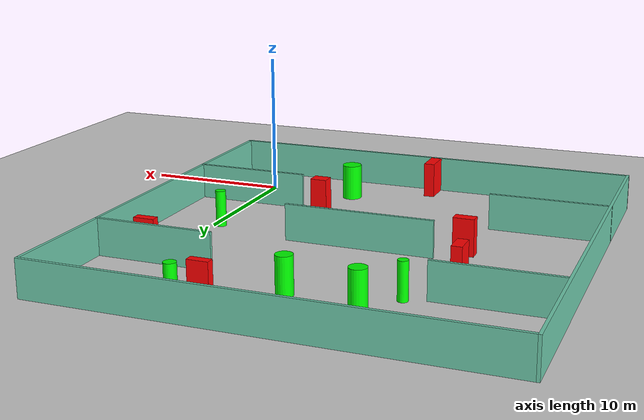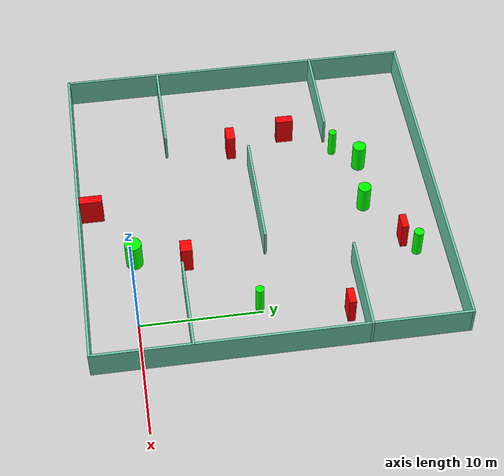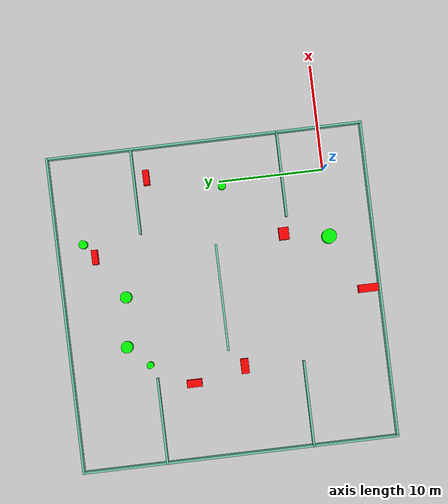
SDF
<sdf version="1.7">
 <world name="default">
  <light name="sun" type="directional">
   <pose>0 0 10 0 -0 0</pose>
   <diffuse>0.8 0.8 0.8 1</diffuse>
   <specular>0.2 0.2 0.2 1</specular>
   <attenuation>
    <range>1000</range>
    <constant>0.9</constant>
    <linear>0.01</linear>
    <quadratic>0.001</quadratic>
   </attenuation>
   <direction>-0.5 0.1 -0.9</direction>
   <spot><inner_angle>0</inner_angle><outer_angle>0</outer_angle><falloff>0</falloff></spot>
  </light>
  <model name="ground_plane">
   <static>1</static>
   <link name="link">
    <collision name="collision">
     <geometry><plane><normal>0 0 1</normal><size>100 100</size></plane></geometry>
     <surface>
      <contact><collide_bitmask>65535</collide_bitmask></contact>
      <friction><ode><mu>100</mu><mu2>50</mu2></ode></friction>
     </surface>
    </collision>
    <visual name="visual">
     <cast_shadows>0</cast_shadows>
     <geometry><plane><normal>0 0 1</normal><size>100 100</size></plane></geometry>
     <material>
      <script><uri>file://media/materials/scripts/gazebo.material</uri><name>Gazebo/Grey</name></script>
     </material>
    </visual>
   </link>
  </model>
  <gravity>0 0 -9.8</gravity>
  <magnetic_field>6e-06 2.3e-05 -4.2e-05</magnetic_field>
  <atmosphere type="adiabatic"/>
  <physics type="ode">
   <max_step_size>0.001</max_step_size>
   <real_time_factor>1</real_time_factor>
   <real_time_update_rate>1000</real_time_update_rate>
  </physics>
  <scene><ambient>0.4 0.4 0.4 1</ambient><background>0.7 0.7 0.7 1</background><shadows>1</shadows></scene>
  <spherical_coordinates>
   <surface_model>EARTH_WGS84</surface_model>
   <latitude_deg>0</latitude_deg>
   <longitude_deg>0</longitude_deg>
   <elevation>0</elevation>
   <heading_deg>0</heading_deg>
  </spherical_coordinates>
  <model name="my_base_walls">
   <link name="Wall_10">
    <collision name="Wall_10_Collision">
     <geometry><box><size>8.2 0.2 2.5</size></box></geometry>
     <pose>0 0 1.25 0 -0 0</pose>
    </collision>
    <visual name="Wall_10_Visual">
     <pose>0 0 1.25 0 -0 0</pose>
     <geometry><box><size>8.2 0.2 2.5</size></box></geometry>
     <material>
      <script><uri>file://media/materials/scripts/gazebo.material</uri><name>Gazebo/Grey</name></script>
      <ambient>0.435294 0.796078 0.67451 1</ambient>
     </material>
     <meta><layer>0</layer></meta>
    </visual>
    <pose>-11 -7 0 0 -0 0</pose>
   </link>
   <link name="Wall_12">
    <collision name="Wall_12_Collision">
     <geometry><box><size>8.2 0.2 2.5</size></box></geometry>
     <pose>0 0 1.25 0 -0 0</pose>
    </collision>
    <visual name="Wall_12_Visual">
     <pose>0 0 1.25 0 -0 0</pose>
     <geometry><box><size>8.2 0.2 2.5</size></box></geometry>
     <material>
      <script><uri>file://media/materials/scripts/gazebo.material</uri><name>Gazebo/Grey</name></script>
      <ambient>0.435294 0.796078 0.67451 1</ambient>
     </material>
     <meta><layer>0</layer></meta>
    </visual>
    <pose>-11 7 0 0 -0 0</pose>
   </link>
   <link name="Wall_14">
    <collision name="Wall_14_Collision">
     <geometry><box><size>8.2 0.2 2.5</size></box></geometry>
     <pose>0 0 1.25 0 -0 0</pose>
    </collision>
    <visual name="Wall_14_Visual">
     <pose>0 0 1.25 0 -0 0</pose>
     <geometry><box><size>8.2 0.2 2.5</size></box></geometry>
     <material>
      <script><uri>file://media/materials/scripts/gazebo.material</uri><name>Gazebo/Grey</name></script>
      <ambient>0.435294 0.796078 0.67451 1</ambient>
     </material>
     <meta><layer>0</layer></meta>
    </visual>
    <pose>11 7 0 0 -0 3.14159</pose>
   </link>
   <link name="Wall_16">
    <collision name="Wall_16_Collision">
     <geometry><box><size>10.2 0.2 2.5</size></box></geometry>
     <pose>0 0 1.25 0 -0 0</pose>
    </collision>
    <visual name="Wall_16_Visual">
     <pose>0 0 1.25 0 -0 0</pose>
     <geometry><box><size>10.2 0.2 2.5</size></box></geometry>
     <material>
      <script><uri>file://media/materials/scripts/gazebo.material</uri><name>Gazebo/Grey</name></script>
      <ambient>0.435294 0.796078 0.67451 1</ambient>
     </material>
     <meta><layer>0</layer></meta>
    </visual>
    <pose>0 0 0 0 -0 3.14159</pose>
   </link>
   <link name="Wall_2">
    <collision name="Wall_2_Collision">
     <geometry><box><size>30.2 0.2 2.5</size></box></geometry>
     <pose>0 0 1.25 0 -0 0</pose>
    </collision>
    <visual name="Wall_2_Visual">
     <pose>0 0 1.25 0 -0 0</pose>
     <geometry><box><size>30.2 0.2 2.5</size></box></geometry>
     <material>
      <script><uri>file://media/materials/scripts/gazebo.material</uri><name>Gazebo/Grey</name></script>
      <ambient>0.435294 0.796078 0.67451 1</ambient>
     </material>
     <meta><layer>0</layer></meta>
    </visual>
    <pose>0 -15 0 0 -0 3.14159</pose>
   </link>
   <link name="Wall_3">
    <collision name="Wall_3_Collision">
     <geometry><box><size>30.2 0.2 2.5</size></box></geometry>
     <pose>0 0 1.25 0 -0 0</pose>
    </collision>
    <visual name="Wall_3_Visual">
     <pose>0 0 1.25 0 -0 0</pose>
     <geometry><box><size>30.2 0.2 2.5</size></box></geometry>
     <material>
      <script><uri>file://media/materials/scripts/gazebo.material</uri><name>Gazebo/Grey</name></script>
      <ambient>0.435294 0.796078 0.67451 1</ambient>
     </material>
     <meta><layer>0</layer></meta>
    </visual>
    <pose>-15 0 0 0 -0 1.5708</pose>
   </link>
   <link name="Wall_4">
    <collision name="Wall_4_Collision">
     <geometry><box><size>30.2 0.2 2.5</size></box></geometry>
     <pose>0 0 1.25 0 -0 0</pose>
    </collision>
    <visual name="Wall_4_Visual">
     <pose>0 0 1.25 0 -0 0</pose>
     <geometry><box><size>30.2 0.2 2.5</size></box></geometry>
     <material>
      <script><uri>file://media/materials/scripts/gazebo.material</uri><name>Gazebo/Grey</name></script>
      <ambient>0.435294 0.796078 0.67451 1</ambient>
     </material>
     <meta><layer>0</layer></meta>
    </visual>
    <pose>0 15 0 0 -0 0</pose>
   </link>
   <link name="Wall_6">
    <collision name="Wall_6_Collision">
     <geometry><box><size>30.2 0.2 2.5</size></box></geometry>
     <pose>0 0 1.25 0 -0 0</pose>
    </collision>
    <visual name="Wall_6_Visual">
     <pose>0 0 1.25 0 -0 0</pose>
     <geometry><box><size>30.2 0.2 2.5</size></box></geometry>
     <material>
      <script><uri>file://media/materials/scripts/gazebo.material</uri><name>Gazebo/Grey</name></script>
      <ambient>0.435294 0.796078 0.67451 1</ambient>
     </material>
     <meta><layer>0</layer></meta>
    </visual>
    <pose>15 0 0 0 -0 1.5708</pose>
   </link>
   <link name="Wall_8">
    <collision name="Wall_8_Collision">
     <geometry><box><size>8.2 0.2 2.5</size></box></geometry>
     <pose>0 0 1.25 0 -0 0</pose>
    </collision>
    <visual name="Wall_8_Visual">
     <pose>0 0 1.25 0 -0 0</pose>
     <geometry><box><size>8.2 0.2 2.5</size></box></geometry>
     <material>
      <script><uri>file://media/materials/scripts/gazebo.material</uri><name>Gazebo/Grey</name></script>
      <ambient>0.435294 0.796078 0.67451 1</ambient>
     </material>
     <meta><layer>0</layer></meta>
    </visual>
    <pose>11 -7 0 0 -0 3.14159</pose>
   </link>
   <static>1</static>
   <pose>-11 11 0 0 -0 0</pose>
  </model>
  <model name="cylinder1">
   <static>1</static>
   <link name="link">
    <inertial>
     <mass>1</mass>
     <inertia><ixx>0.5</ixx><ixy>0</ixy><ixz>0</ixz><iyy>0.5</iyy><iyz>0</iyz><izz>1</izz></inertia>
    </inertial>
    <collision name="collision">
     <geometry><cylinder><radius>0.3330846267618585</radius><length>2.5</length></cylinder></geometry>
    </collision>
    <visual name="visual">
     <geometry><cylinder><radius>0.3330846267618585</radius><length>2.5</length></cylinder></geometry>
     <material>
      <ambient>0 1 0 1</ambient>
      <diffuse>0 1 0 1</diffuse>
      <specular>0.1 0.1 0.1 1</specular>
      <emissive>0 0 0 0</emissive>
     </material>
    </visual>
   </link>
   <pose>-16.594533875712514 18.51820557764028 1.25 0 0 0</pose>
  </model>
  <model name="cylinder2">
   <static>1</static>
   <link name="link">
    <inertial>
     <mass>1</mass>
     <inertia><ixx>0.5</ixx><ixy>0</ixy><ixz>0</ixz><iyy>0.5</iyy><iyz>0</iyz><izz>1</izz></inertia>
    </inertial>
    <collision name="collision">
     <geometry><cylinder><radius>0.5514220494935415</radius><length>2.5</length></cylinder></geometry>
    </collision>
    <visual name="visual">
     <geometry><cylinder><radius>0.5514220494935415</radius><length>2.5</length></cylinder></geometry>
     <material>
      <ambient>0 1 0 1</ambient>
      <diffuse>0 1 0 1</diffuse>
      <specular>0.1 0.1 0.1 1</specular>
      <emissive>0 0 0 0</emissive>
     </material>
    </visual>
   </link>
   <pose>-9.918557809941694 20.0606453196314 1.25 0 0 0</pose>
  </model>
  <model name="cylinder3">
   <static>1</static>
   <link name="link">
    <inertial>
     <mass>1</mass>
     <inertia><ixx>0.5</ixx><ixy>0</ixy><ixz>0</ixz><iyy>0.5</iyy><iyz>0</iyz><izz>1</izz></inertia>
    </inertial>
    <collision name="collision">
     <geometry><cylinder><radius>0.5712600191695715</radius><length>2.5</length></cylinder></geometry>
    </collision>
    <visual name="visual">
     <geometry><cylinder><radius>0.5712600191695715</radius><length>2.5</length></cylinder></geometry>
     <material>
      <ambient>0 1 0 1</ambient>
      <diffuse>0 1 0 1</diffuse>
      <specular>0.1 0.1 0.1 1</specular>
      <emissive>0 0 0 0</emissive>
     </material>
    </visual>
   </link>
   <pose>-14.626885899697257 20.516331703863322 1.25 0 0 0</pose>
  </model>
  <model name="cylinder4">
   <static>1</static>
   <link name="link">
    <inertial>
     <mass>1</mass>
     <inertia><ixx>0.5</ixx><ixy>0</ixy><ixz>0</ixz><iyy>0.5</iyy><iyz>0</iyz><izz>1</izz></inertia>
    </inertial>
    <collision name="collision">
     <geometry><cylinder><radius>0.35423695646246106</radius><length>2.5</length></cylinder></geometry>
    </collision>
    <visual name="visual">
     <geometry><cylinder><radius>0.35423695646246106</radius><length>2.5</length></cylinder></geometry>
     <material>
      <ambient>0 1 0 1</ambient>
      <diffuse>0 1 0 1</diffuse>
      <specular>0.1 0.1 0.1 1</specular>
      <emissive>0 0 0 0</emissive>
     </material>
    </visual>
   </link>
   <pose>-0.464071695731036 9.762836888972378 1.25 0 0 0</pose>
  </model>
  <model name="cylinder5">
   <static>1</static>
   <link name="link">
    <inertial>
     <mass>1</mass>
     <inertia><ixx>0.5</ixx><ixy>0</ixy><ixz>0</ixz><iyy>0.5</iyy><iyz>0</iyz><izz>1</izz></inertia>
    </inertial>
    <collision name="collision">
     <geometry><cylinder><radius>0.6927106706451525</radius><length>2.5</length></cylinder></geometry>
    </collision>
    <visual name="visual">
     <geometry><cylinder><radius>0.6927106706451525</radius><length>2.5</length></cylinder></geometry>
     <material>
      <ambient>0 1 0 1</ambient>
      <diffuse>0 1 0 1</diffuse>
      <specular>0.1 0.1 0.1 1</specular>
      <emissive>0 0 0 0</emissive>
     </material>
    </visual>
   </link>
   <pose>-6.4307081347163315 0.19726092742785184 1.25 0 0 0</pose>
  </model>
  <model name="cylinder6">
   <static>1</static>
   <link name="link">
    <inertial>
     <mass>1</mass>
     <inertia><ixx>0.5</ixx><ixy>0</ixy><ixz>0</ixz><iyy>0.5</iyy><iyz>0</iyz><izz>1</izz></inertia>
    </inertial>
    <collision name="collision">
     <geometry><cylinder><radius>0.3996055904352036</radius><length>2.5</length></cylinder></geometry>
    </collision>
    <visual name="visual">
     <geometry><cylinder><radius>0.3996055904352036</radius><length>2.5</length></cylinder></geometry>
     <material>
      <ambient>0 1 0 1</ambient>
      <diffuse>0 1 0 1</diffuse>
      <specular>0.1 0.1 0.1 1</specular>
      <emissive>0 0 0 0</emissive>
     </material>
    </visual>
   </link>
   <pose>-4.458187266358449 23.517030325497547 1.25 0 0 0</pose>
  </model>
  <model name="box1">
   <static>1</static>
   <link name="link">
    <inertial>
     <mass>1</mass>
     <inertia><ixx>0.083</ixx><ixy>0</ixy><ixz>0</ixz><iyy>0.083</iyy><iyz>0</iyz><izz>0.083</izz></inertia>
    </inertial>
    <collision name="collision">
     <geometry><box><size>1.426599325879025 0.5814704372145968 2.5</size></box></geometry>
    </collision>
    <visual name="visual">
     <geometry><box><size>1.426599325879025 0.5814704372145968 2.5</size></box></geometry>
     <material>
      <ambient>1 0 0 1</ambient>
      <diffuse>1 0 0 1</diffuse>
      <specular>0.1 0.1 0.1 1</specular>
      <emissive>0 0 0 0</emissive>
     </material>
    </visual>
    <sensor name="my_contact" type="contact">
     <contact><collision>box_collision</collision><topic>__default_topic__</topic></contact>
    </sensor>
   </link>
   <pose>1.1652357474045623 16.820770429780335 1.25 0 0 0</pose>
  </model>
  <model name="box2">
   <static>1</static>
   <link name="link">
    <inertial>
     <mass>1</mass>
     <inertia><ixx>0.083</ixx><ixy>0</ixy><ixz>0</ixz><iyy>0.083</iyy><iyz>0</iyz><izz>0.083</izz></inertia>
    </inertial>
    <collision name="collision">
     <geometry><box><size>1.174762204940626 0.9422189859342684 2.5</size></box></geometry>
    </collision>
    <visual name="visual">
     <geometry><box><size>1.174762204940626 0.9422189859342684 2.5</size></box></geometry>
     <material>
      <ambient>1 0 0 1</ambient>
      <diffuse>1 0 0 1</diffuse>
      <specular>0.1 0.1 0.1 1</specular>
      <emissive>0 0 0 0</emissive>
     </material>
    </visual>
    <sensor name="my_contact" type="contact">
     <contact><collision>box_collision</collision><topic>__default_topic__</topic></contact>
    </sensor>
   </link>
   <pose>-5.6709311970774365 4.44811139136927 1.25 0 0 0</pose>
  </model>
  <model name="box3">
   <static>1</static>
   <link name="link">
    <inertial>
     <mass>1</mass>
     <inertia><ixx>0.083</ixx><ixy>0</ixy><ixz>0</ixz><iyy>0.083</iyy><iyz>0</iyz><izz>0.083</izz></inertia>
    </inertial>
    <collision name="collision">
     <geometry><box><size>0.7115103010590541 1.4531919950883312 2.5</size></box></geometry>
    </collision>
    <visual name="visual">
     <geometry><box><size>0.7115103010590541 1.4531919950883312 2.5</size></box></geometry>
     <material>
      <ambient>1 0 0 1</ambient>
      <diffuse>1 0 0 1</diffuse>
      <specular>0.1 0.1 0.1 1</specular>
      <emissive>0 0 0 0</emissive>
     </material>
    </visual>
    <sensor name="my_contact" type="contact">
     <contact><collision>box_collision</collision><topic>__default_topic__</topic></contact>
    </sensor>
   </link>
   <pose>-18.791947395808535 14.555064865294916 1.25 0 0 0</pose>
  </model>
  <model name="box4">
   <static>1</static>
   <link name="link">
    <inertial>
     <mass>1</mass>
     <inertia><ixx>0.083</ixx><ixy>0</ixy><ixz>0</ixz><iyy>0.083</iyy><iyz>0</iyz><izz>0.083</izz></inertia>
    </inertial>
    <collision name="collision">
     <geometry><box><size>1.4106946311653377 0.7466755960640125 2.5</size></box></geometry>
    </collision>
    <visual name="visual">
     <geometry><box><size>1.4106946311653377 0.7466755960640125 2.5</size></box></geometry>
     <material>
      <ambient>1 0 0 1</ambient>
      <diffuse>1 0 0 1</diffuse>
      <specular>0.1 0.1 0.1 1</specular>
      <emissive>0 0 0 0</emissive>
     </material>
    </visual>
    <sensor name="my_contact" type="contact">
     <contact><collision>box_collision</collision><topic>__default_topic__</topic></contact>
    </sensor>
   </link>
   <pose>-17.733718914353354 9.615665193633955 1.25 0 0 0</pose>
  </model>
  <model name="box5">
   <static>1</static>
   <link name="link">
    <inertial>
     <mass>1</mass>
     <inertia><ixx>0.083</ixx><ixy>0</ixy><ixz>0</ixz><iyy>0.083</iyy><iyz>0</iyz><izz>0.083</izz></inertia>
    </inertial>
    <collision name="collision">
     <geometry><box><size>0.75704338585015 1.8917629373312503 2.5</size></box></geometry>
    </collision>
    <visual name="visual">
     <geometry><box><size>0.75704338585015 1.8917629373312503 2.5</size></box></geometry>
     <material>
      <ambient>1 0 0 1</ambient>
      <diffuse>1 0 0 1</diffuse>
      <specular>0.1 0.1 0.1 1</specular>
      <emissive>0 0 0 0</emissive>
     </material>
    </visual>
    <sensor name="my_contact" type="contact">
     <contact><collision>box_collision</collision><topic>__default_topic__</topic></contact>
    </sensor>
   </link>
   <pose>-11.748085681223941 -2.9219742263223396 1.25 0 0 0</pose>
  </model>
  <model name="box6">
   <static>1</static>
   <link name="link">
    <inertial>
     <mass>1</mass>
     <inertia><ixx>0.083</ixx><ixy>0</ixy><ixz>0</ixz><iyy>0.083</iyy><iyz>0</iyz><izz>0.083</izz></inertia>
    </inertial>
    <collision name="collision">
     <geometry><box><size>1.396812640931938 0.5576288064989836 2.5</size></box></geometry>
    </collision>
    <visual name="visual">
     <geometry><box><size>1.396812640931938 0.5576288064989836 2.5</size></box></geometry>
     <material>
      <ambient>1 0 0 1</ambient>
      <diffuse>1 0 0 1</diffuse>
      <specular>0.1 0.1 0.1 1</specular>
      <emissive>0 0 0 0</emissive>
     </material>
    </visual>
    <sensor name="my_contact" type="contact">
     <contact><collision>box_collision</collision><topic>__default_topic__</topic></contact>
    </sensor>
   </link>
   <pose>-5.791555833805065 22.543842793821604 1.25 0 0 0</pose>
  </model>
 </world>
</sdf>
